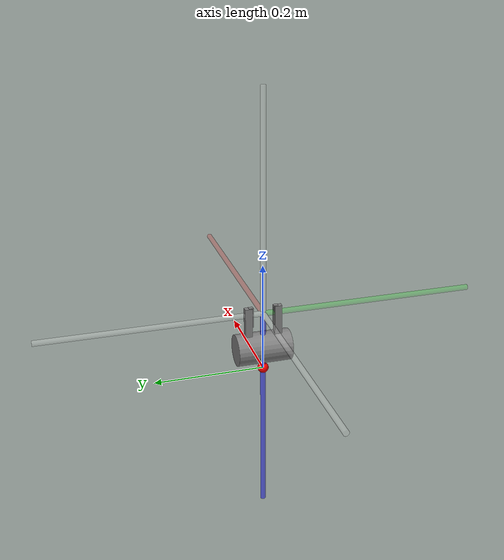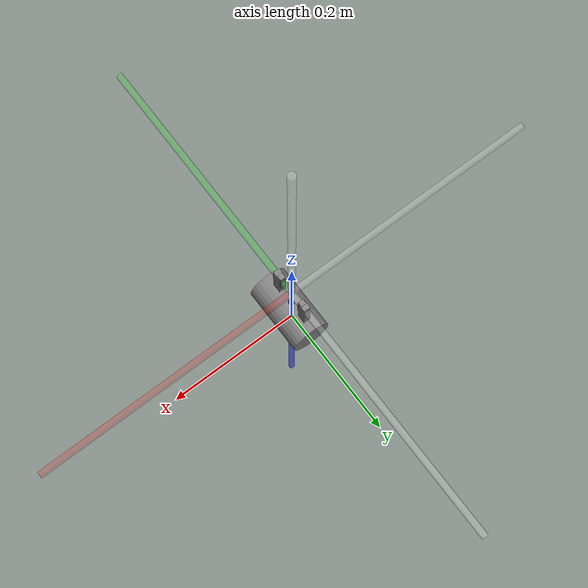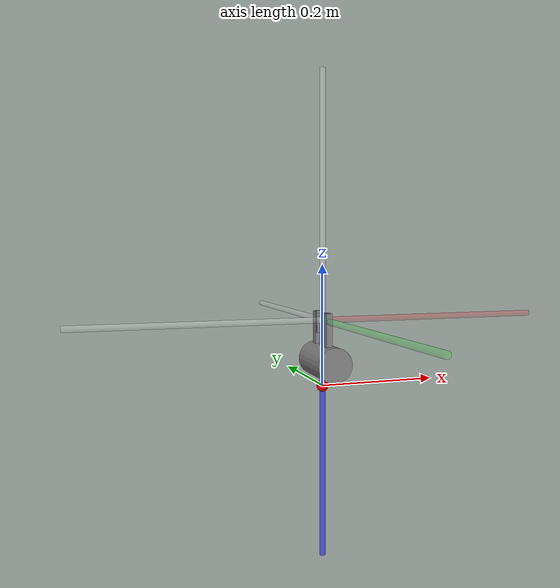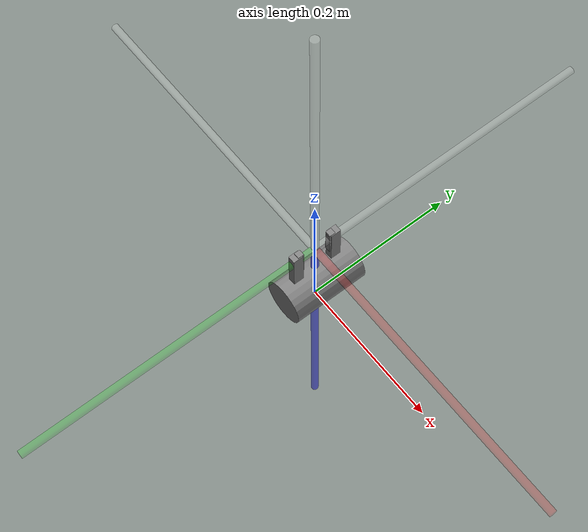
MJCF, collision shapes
<mujoco model="base">
    <asset>
        <mesh name="electric_gripper_base" file="meshes/electric_gripper_base.stl" />
        <mesh name="standard_narrow" file="meshes/standard_narrow.stl" />
        <mesh name="half_round_tip" file="meshes/half_round_tip.stl" />
        <mesh name="connector_plate" file="meshes/connector_plate.stl" />
    </asset>
    <actuator>
        <position ctrllimited="true" ctrlrange="-0.020833 0.0115" joint="r_finger_joint" kp="1000" name="gripper_r_finger_joint" forcelimited="true" forcerange="-20 20"/>
        <position ctrllimited="true" ctrlrange="-0.020833 0.0115" joint="l_finger_joint" kp="1000" name="gripper_l_finger_joint" forcelimited="true" forcerange="-20 20"/>
    </actuator>

    <worldbody>
        <body name="gripper_base">
            <site name="ft_frame" pos="0 0 0" size="0.01 0.01 0.01" rgba="1 0 0 1" type="sphere" group="1"/>
            <inertial pos="0 0 0" quat="-0.5 0.5 0.5 0.5" mass="0.0001" diaginertia="3e-08 2e-08 2e-08" />
            <geom type="mesh" contype="0" conaffinity="0" group="1" mesh="connector_plate" name="connector_plate" pos="0 0 0.0018" rgba="0.499 0.499 0.499 1"/>
            <geom type="mesh" contype="0" conaffinity="0" group="1" mesh="electric_gripper_base" name="electric_gripper_base" pos="0 0 0.0194" rgba="0.499 0.499 0.499 1"/>
            <geom size="0.029 0.05" quat="0 0 0.707107 0.707107" type="cylinder" group="0" name="gripper_base_col" pos="0.004 0.0 0.04"/>
            <!-- This site was added for visualization. -->
            <body name="eef" pos="0 0 0.109" quat="0 1 0 0">
                <site name="grip_site" pos="0 0 0" size="0.005" rgba="1 0 0 0.1" type="sphere" group="1"/>
                <site name="ee_x" pos="0.2 0 0" size="0.005 .2"  quat="0.707105  0 0.707108 0 " rgba="1 0 0 0.1" type="cylinder" group="1"/>
                <site name="ee_y" pos="0 0.2 0" size="0.005 .2" quat="0.707105 0.707108 0 0" rgba="0 1 0 0.1" type="cylinder" group="1"/>
                <site name="ee_z" pos="0 0 0.2" size="0.005 .2" quat="1 0 0 0" rgba="0 0 1 0.5" type="cylinder" group="1"/>
                <site name="ee_x_ne" pos="-0.2 0 0" size="0.005 .2"  quat="0.707105  0 0.707108 0 " rgba="1 1 1 0.1" type="cylinder" group="1"/>
                <site name="ee_y_ne" pos="0 -0.2 0" size="0.005 .2" quat="0.707105 0.707108 0 0" rgba="1 1 1 0.1" type="cylinder" group="1"/>
                <site name="ee_z_ne" pos="0 0 -0.2" size="0.005 .2" quat="1 0 0 0" rgba="1 1 1 0.1" type="cylinder" group="1"/>
            </body>
            <body name="l_finger" pos="0 0.01 0.0444">
                <inertial pos="0 0 0" quat="0 0 0 -1" mass="0.0001" diaginertia="0.001 0.001 0.001" />
                <joint name="l_finger_joint" pos="0 0 0" axis="0 1 0" type="slide" limited="true" range="-0.0115 0.020833" damping="100" armature="1.0" frictionloss="1.0"/>
                <geom name="l_finger" quat="0 0 0 -1" type="mesh" contype="0" conaffinity="0" group="1" mesh="standard_narrow" rgba="0.499 0.499 0.499 1"/>
                <geom size="0.005 0.00675 0.0375" pos="0 0.01725 0.04" quat="0 0 0 -1" type="box" group="0" conaffinity="1" contype="0" name="l_finger_g0" friction="0 0 0"/>
                <geom size="0.005 0.025 0.0085" pos="-0.005 -0.003 0.0083" quat="0 0 0 -1" type="box" group="0" conaffinity="1" contype="0" name="l_finger_g1" friction="0 0 0"/>
                <body name="l_finger_tip" pos="0 0.01725 0.075">
                    <inertial pos="0 0 0" quat="0 0 0 1" mass="0.0001" diaginertia="0.001 0.001 0.001" />
                    <geom name="l_fingertip_g0_vis" quat="0 0 0 1" type="mesh" contype="0" conaffinity="0" group="1" mesh="half_round_tip" rgba="0.499 0.499 0.499 1"/>
                    <geom size="0.004 0.004 0.0185" pos="0 -0.0045 -0.015" quat="0 0 0 -1" type="box" group="0"  conaffinity="1" contype="0" condim="4" name="l_fingertip_g0" friction="1 1 1" solimp="1 1 1"/>
                    <geom size="0.0035 0.004 0.0165" pos="0 -0.0047 -0.017" type="box"  conaffinity="1" contype="0" name="l_fingerpad_g0" condim="4" friction="1 1 1" solimp="1 1 1"/>
                </body>
            </body>
            <body name="r_finger" pos="0 -0.01 0.0444">
                <inertial pos="0 0 0" mass="0.0001" diaginertia="0.001 0.001 0.001" />
                <joint name="r_finger_joint" pos="0 0 0" axis="0 -1 0" type="slide" limited="true" range="-0.020833 0.0115" damping="100" armature="1.0" frictionloss="1.0"/>
                <geom name="r_finger" type="mesh" contype="0" conaffinity="0" group="1" mesh="standard_narrow" rgba="0.499 0.499 0.499 1"/>
                <geom size="0.005 0.00675 0.0375" pos="0 -0.01725 0.04" type="box" group="0" conaffinity="1" contype="0" name="r_finger_g0" friction="0 0 0"/>
                <geom size="0.005 0.025 0.0085" pos="0.005 0.003 0.0083" type="box" group="0" conaffinity="1" contype="0" name="r_finger_g1" friction="0 0 0"/>
                <body name="r_finger_tip" pos="0 -0.01725 0.075">
                    <inertial pos="0 0 0" mass="0.0001" diaginertia="0.001 0.001 0.001" />
                    <geom name="r_fingertip_g0_vis" type="mesh" contype="0" conaffinity="0" group="1" mesh="half_round_tip" rgba="0.499 0.499 0.499 1"/>
                    <geom size="0.004 0.004 0.0185" pos="0 0.0045 -0.015" type="box" group="0" conaffinity="1" contype="0" condim="4" name="r_fingertip_g0"  friction="1 1 1" solimp="1 1 1"/>
                    <geom size="0.0035 0.004 0.0165" pos="0 0.0047 -0.017" type="box"  conaffinity="1" contype="0" condim="4" name="r_fingerpad_g0"  friction="1 1 1" solimp="1 1 1"/>
                </body>
            </body>
        </body>
    </worldbody>
    <equality>
        <joint joint1="r_finger_joint" joint2="l_finger_joint"/>
    </equality>
    <sensor>
        <force name="force_ee" site="ft_frame"/>
        <torque name="torque_ee" site="ft_frame"/>
    </sensor>
</mujoco>
